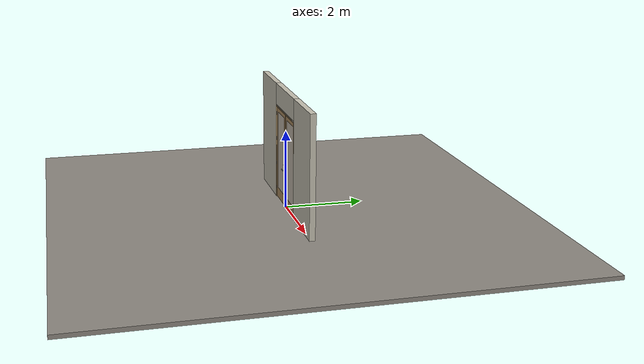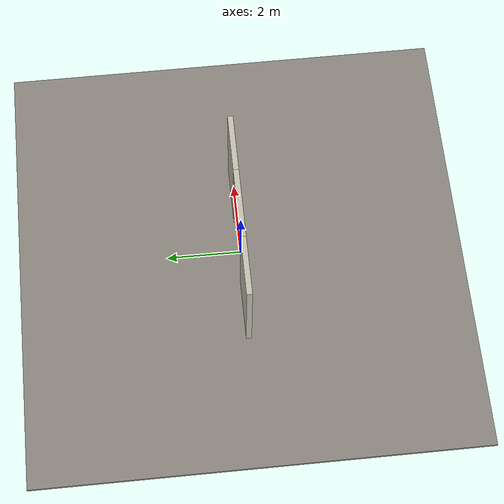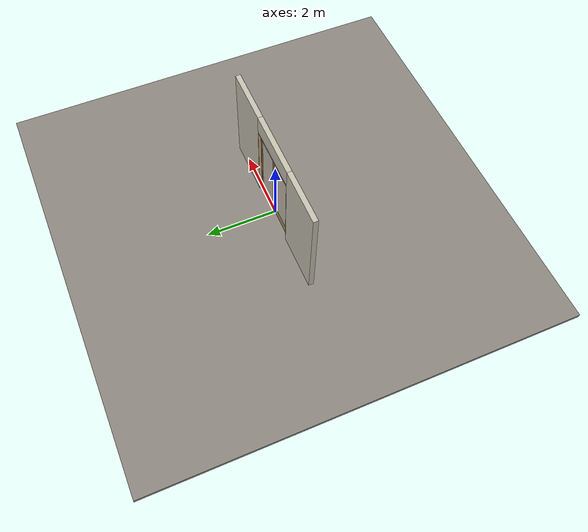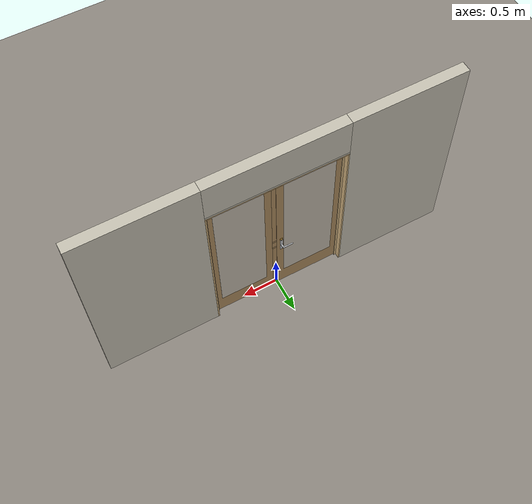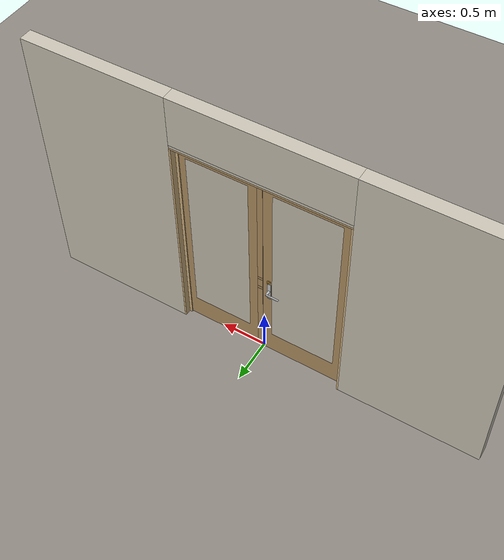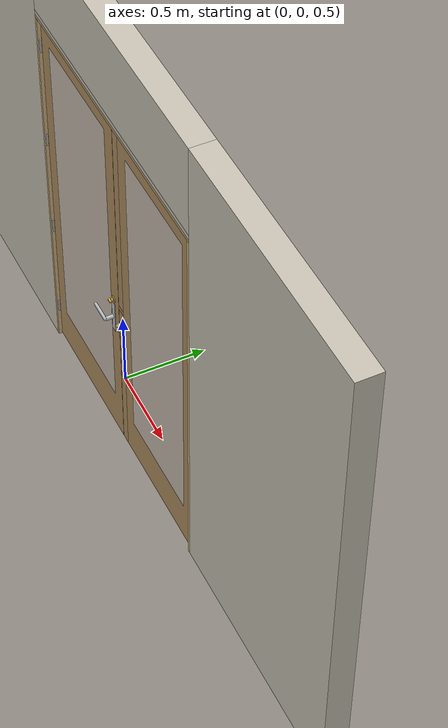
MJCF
<?xml version="1.0" ?>
<mujoco model="db0682_swing_double_full">
  <compiler angle="radian" meshdir="../../hardware" texturedir="../../textures" autolimits="true" inertiafromgeom="false"/>
  <option timestep="0.002" integrator="implicitfast" cone="elliptic" impratio="10" noslip_iterations="3">
    <flag multiccd="enable"/>
  </option>
  <size memory="16M"/>
  <default>
    <geom condim="4" solref="0.005 1" solimp="0.95 0.99 0.001"/>
    <joint solreflimit="0.005 1" solimplimit="0.95 0.99 0.001"/>
    <tendon solreflimit="0.005 1"/>
    <equality solref="0.002 1"/>
  </default>
  <visual>
    <headlight ambient="0.4 0.4 0.4" diffuse="0.7 0.7 0.7" specular="0.2 0.2 0.2"/>
    <quality shadowsize="4096"/>
    <map znear="0.01" zfar="60"/>
  </visual>
  <asset>
    <mesh name="cyl_face_e9e5036966" file="cyl_face_e9e5036966.obj"/>
    <mesh name="hinge_2af0f4d6ca" file="hinge_2af0f4d6ca.obj"/>
    <mesh name="hinge_jamb_c0c0a62ada" file="hinge_jamb_c0c0a62ada.obj"/>
    <mesh name="lever_f913fc5b7b" file="lever_f913fc5b7b.obj"/>
    <mesh name="thumbturn_eb5c9899a3" file="thumbturn_eb5c9899a3.obj"/>
    <material name="mat_floor" rgba="0.55 0.53 0.5 1" specular="0.2" shininess="0.15" reflectance="0"/>
    <material name="mat_wall" rgba="0.78 0.76 0.7 1" specular="0.2" shininess="0.1" reflectance="0"/>
    <material name="mat_leaf_a" rgba="0.686 0.557 0.377 1" specular="0.2" shininess="0.45" reflectance="0"/>
    <material name="mat_glass" rgba="0.9 0.93 0.95 0.6" specular="0.2" shininess="0.5" reflectance="0.1"/>
    <material name="mat_hinge" rgba="0.65 0.66 0.68 1" specular="0.74" shininess="0.5" reflectance="0.36"/>
    <material name="mat_op_stainless" rgba="0.75 0.76 0.77 1" specular="0.8" shininess="0.65" reflectance="0.4"/>
    <material name="mat_trim" rgba="0.85 0.66 0.3 1" specular="0.8" shininess="0.75" reflectance="0.4"/>
    <material name="mat_bolt" rgba="0.85 0.66 0.3 1" specular="0.8" shininess="0.75" reflectance="0.4"/>
    <material name="mat_deadbolt" rgba="0.85 0.66 0.3 1" specular="0.8" shininess="0.75" reflectance="0.4"/>
    <material name="mat_leaf_b" rgba="0.686 0.557 0.377 1" specular="0.2" shininess="0.45" reflectance="0"/>
    <material name="mat_frame" rgba="0.82 0.7 0.5 1" specular="0.2" shininess="0.45" reflectance="0"/>
    <texture name="skybox" type="skybox" builtin="gradient" rgb1="0.6 0.7 0.85" rgb2="0.9 0.92 0.95" width="256" height="256"/>
  </asset>
  <worldbody>
    <light name="sun" pos="1.5 -2.5 4" dir="-0.3 0.5 -0.8" directional="true" diffuse="0.8 0.8 0.8" specular="0.3 0.3 0.3" castshadow="true"/>
    <light name="fill" pos="-1.5 2.5 3" dir="0.3 -0.5 -0.7" directional="true" diffuse="0.35 0.35 0.4" castshadow="false"/>
    <camera name="robot_view" pos="0 -2.892313 2.043887" xyaxes="1 0 0 0 0.26963 0.962964" fovy="52"/>
    <camera name="far_view" pos="0 2.953313 2.043887" xyaxes="-1 0 0 0 -0.26963 0.962964" fovy="52"/>
    <camera name="iso" pos="-2.221337 -2.424663 2.511538" xyaxes="0.741536 -0.670913 0 0.242917 0.268487 0.932151" fovy="46"/>
    <camera name="detail_handle" pos="0.0045 -0.877 1.245" xyaxes="0.97561 0.219512 0 -0.070934 0.315262 0.94635" fovy="38"/>
    <geom name="floor" type="box" size="6 6 0.05" pos="0 0 -0.05" material="mat_floor" group="0" contype="1" conaffinity="1" friction="0.8 0.005 0.0001" density="2400"/>
    <geom name="wall_left" type="box" size="0.78125 0.0725 1.5255" pos="-1.71875 0.0305 1.5255" material="mat_wall" group="0" contype="1" conaffinity="1" friction="0.6 0.005 0.0001" density="800"/>
    <geom name="wall_right" type="box" size="0.78125 0.0725 1.5255" pos="1.71875 0.0305 1.5255" material="mat_wall" group="0" contype="1" conaffinity="1" friction="0.6 0.005 0.0001" density="800"/>
    <geom name="wall_header" type="box" size="0.9375 0.0725 0.2755" pos="0 0.0305 2.7755" material="mat_wall" group="0" contype="1" conaffinity="1" friction="0.6 0.005 0.0001" density="800"/>
    <geom name="hinge_0_jamb" type="mesh" mesh="hinge_jamb_c0c0a62ada" pos="-0.9155 -0.029 0.259" material="mat_hinge" group="1" contype="0" conaffinity="0" density="7850"/>
    <geom name="hinge_1_jamb" type="mesh" mesh="hinge_jamb_c0c0a62ada" pos="-0.9155 -0.029 0.928333" material="mat_hinge" group="1" contype="0" conaffinity="0" density="7850"/>
    <geom name="hinge_2_jamb" type="mesh" mesh="hinge_jamb_c0c0a62ada" pos="-0.9155 -0.029 1.597667" material="mat_hinge" group="1" contype="0" conaffinity="0" density="7850"/>
    <geom name="hinge_3_jamb" type="mesh" mesh="hinge_jamb_c0c0a62ada" pos="-0.9155 -0.029 2.267" material="mat_hinge" group="1" contype="0" conaffinity="0" density="7850"/>
    <geom name="hinge_0_jamb_2" type="mesh" mesh="hinge_jamb_c0c0a62ada" pos="0.9155 -0.029 0.259" quat="0 0 1 0" material="mat_hinge" group="1" contype="0" conaffinity="0" density="7850"/>
    <geom name="hinge_1_jamb_2" type="mesh" mesh="hinge_jamb_c0c0a62ada" pos="0.9155 -0.029 0.928333" quat="0 0 1 0" material="mat_hinge" group="1" contype="0" conaffinity="0" density="7850"/>
    <geom name="hinge_2_jamb_2" type="mesh" mesh="hinge_jamb_c0c0a62ada" pos="0.9155 -0.029 1.597667" quat="0 0 1 0" material="mat_hinge" group="1" contype="0" conaffinity="0" density="7850"/>
    <geom name="hinge_3_jamb_2" type="mesh" mesh="hinge_jamb_c0c0a62ada" pos="0.9155 -0.029 2.267" quat="0 0 1 0" material="mat_hinge" group="1" contype="0" conaffinity="0" density="7850"/>
    <geom name="jamb_l" type="box" size="0.0095 0.0725 1.2255" pos="-0.928 0.0305 1.2255" material="mat_frame" group="0" contype="1" conaffinity="1" friction="0.6 0.005 0.0001" density="300"/>
    <geom name="jamb_r" type="box" size="0.0095 0.0725 1.2255" pos="0.928 0.0305 1.2255" material="mat_frame" group="0" contype="1" conaffinity="1" friction="0.6 0.005 0.0001" density="300"/>
    <geom name="jamb_head" type="box" size="0.9375 0.0725 0.0095" pos="0 0.0305 2.4605" material="mat_frame" group="0" contype="1" conaffinity="1" friction="0.6 0.005 0.0001" density="300"/>
    <geom name="head_stud" type="box" size="0.9375 0.0725 0.015" pos="0 0.0305 2.485" material="mat_wall" group="0" contype="1" conaffinity="1" friction="0.6 0.005 0.0001" density="500"/>
    <geom name="stop_l" type="box" size="0.015 0.006 1.2255" pos="-0.9035 0.0285 1.2255" material="mat_frame" group="0" contype="1" conaffinity="1" friction="0.6 0.005 0.0001" density="300"/>
    <geom name="stop_r" type="box" size="0.015 0.006 1.2255" pos="0.9035 0.0285 1.2255" material="mat_frame" group="0" contype="1" conaffinity="1" friction="0.6 0.005 0.0001" density="300"/>
    <geom name="stop_head" type="box" size="0.9185 0.006 0.015" pos="0 0.0285 2.436" material="mat_frame" group="0" contype="1" conaffinity="1" friction="0.6 0.005 0.0001" density="300"/>
    <site name="approach_point" pos="0 -1.5 0" quat="1 0 0 0" size="0.05" rgba="0.2 0.9 0.2 0.5" group="4"/>
    <site name="goal_point" pos="0 1.5 0" quat="1 0 0 0" size="0.05" rgba="0.2 0.9 0.2 0.5" group="4"/>
    <site name="door_plane_center" pos="0 0 1.2255" quat="1 0 0 0" size="0.02" rgba="0.2 0.9 0.2 0.5" group="4"/>
    <site name="approach_point_2" pos="0 -1.5 0" quat="1 0 0 0" size="0.05" rgba="0.2 0.9 0.2 0.5" group="4"/>
    <site name="goal_point_2" pos="0 1.5 0" quat="1 0 0 0" size="0.05" rgba="0.2 0.9 0.2 0.5" group="4"/>
    <site name="door_plane_center_2" pos="0 0 1.2255" quat="1 0 0 0" size="0.02" rgba="0.2 0.9 0.2 0.5" group="4"/>
    <site name="approach_point_3" pos="0 -1.5 0" quat="1 0 0 0" size="0.05" rgba="0.2 0.9 0.2 0.5" group="4"/>
    <site name="goal_point_3" pos="0 1.5 0" quat="1 0 0 0" size="0.05" rgba="0.2 0.9 0.2 0.5" group="4"/>
    <site name="door_plane_center_3" pos="0 0 1.2255" quat="1 0 0 0" size="0.02" rgba="0.2 0.9 0.2 0.5" group="4"/>
    <body name="leaf_a" pos="-0.9185 0 0">
      <inertial pos="0.448485 -0.000452 1.225691" mass="36.635832" quat="-0.499825 0.497328 0.502619 0.500214" diaginertia="2.829515567 17.904749165 20.720898413"/>
      <joint name="leaf_a_hinge" type="hinge" axis="0 0 -1" pos="0.003 -0.029 0" limited="true" range="0 1.570796" solreflimit="0.02 1" damping="0.357281" frictionloss="1.408915" armature="0.02"/>
      <geom name="leaf_a_slab" type="box" size="0.457 0.022 1.219" pos="0.46 0 1.228" material="mat_leaf_a" group="0" contype="1" conaffinity="1" friction="0.35 0.005 0.0001" density="1"/>
      <geom name="leaf_a_glass_0" type="box" size="0.35646 0.0228 1.02396" pos="0.46 0 1.30114" material="mat_glass" group="1" contype="0" conaffinity="0" density="1"/>
      <geom name="hinge_0" type="mesh" mesh="hinge_2af0f4d6ca" pos="0.003 -0.029 0.259" material="mat_hinge" group="1" contype="0" conaffinity="0" density="7850"/>
      <geom name="hinge_1" type="mesh" mesh="hinge_2af0f4d6ca" pos="0.003 -0.029 0.928333" material="mat_hinge" group="1" contype="0" conaffinity="0" density="7850"/>
      <geom name="hinge_2" type="mesh" mesh="hinge_2af0f4d6ca" pos="0.003 -0.029 1.597667" material="mat_hinge" group="1" contype="0" conaffinity="0" density="7850"/>
      <geom name="hinge_3" type="mesh" mesh="hinge_2af0f4d6ca" pos="0.003 -0.029 2.267" material="mat_hinge" group="1" contype="0" conaffinity="0" density="7850"/>
      <geom name="leaf_a_handle_escutcheon_n" type="box" size="0.02 0.0015 0.11" pos="0.847 -0.0235 0.965" material="mat_op_stainless" group="1" contype="0" conaffinity="0" density="3000"/>
      <geom name="leaf_a_handle_escutcheon_p" type="box" size="0.02 0.0015 0.11" pos="0.847 0.0235 0.965" material="mat_op_stainless" group="1" contype="0" conaffinity="0" density="3000"/>
      <geom name="leaf_a_latch_bolt_faceplate" type="box" size="0.0006 0.01235 0.0267" pos="0.9164 0 0.965" material="mat_bolt" group="1" contype="0" conaffinity="0" density="8500"/>
      <geom name="leaf_a_deadbolt_faceplate" type="box" size="0.0006 0.014 0.0245" pos="0.9164 0 1.105" material="mat_deadbolt" group="1" contype="0" conaffinity="0" density="8500"/>
      <geom name="leaf_a_deadbolt_cylinder_face" type="mesh" mesh="cyl_face_e9e5036966" pos="0.852 0.022 1.105" quat="-0.707107 0.707107 0 0" material="mat_deadbolt" group="1" contype="0" conaffinity="0" density="7100"/>
      <site name="leaf_a_edge_mid" pos="0.917 0 1.219" quat="1 0 0 0" size="0.02" rgba="0.2 0.9 0.2 0.5" group="4"/>
      <body name="leaf_a_handle" pos="0.847 0 0.965">
        <inertial pos="-0.038995 0 0" mass="0.772658" quat="0.707107 0 0 -0.707107" diaginertia="0.001545312 0.003473151 0.004979007"/>
        <joint name="leaf_a_handle_hinge" type="hinge" axis="0 -1 0" limited="true" range="0 0.65" damping="0.225568" frictionloss="0.051863" stiffness="1" springref="-0.503022" armature="0.01"/>
        <geom name="leaf_a_handle_spindle" type="cylinder" size="0.006 0.034" pos="0 0 0" quat="0.707107 -0.707107 0 0" material="mat_op_stainless" group="1" contype="0" conaffinity="0" density="7850"/>
        <geom name="leaf_a_handle_lever_n" type="mesh" mesh="lever_f913fc5b7b" pos="0 -0.022 0" quat="0.707107 0.707107 0 0" material="mat_op_stainless" group="1" contype="0" conaffinity="0" density="3000"/>
        <geom name="leaf_a_handle_lever_col_n" type="capsule" size="0.0095 0.0555" pos="-0.065 -0.077 0" quat="0.707107 0 -0.707107 0" material="mat_op_stainless" group="3" contype="1" conaffinity="1" rgba="0.8 0.3 0.3 0.25" friction="0.7 0.01 0.0001" density="3000"/>
        <geom name="leaf_a_handle_hub_col_n" type="cylinder" size="0.012 0.022" pos="0 -0.052 0" quat="0.707107 -0.707107 0 0" material="mat_op_stainless" group="3" contype="1" conaffinity="1" rgba="0.8 0.3 0.3 0.25" friction="0.6 0.005 0.0001" density="3000"/>
        <geom name="leaf_a_handle_lever_p" type="mesh" mesh="lever_f913fc5b7b" pos="0 0.022 0" quat="-0.707107 0.707107 0 0" material="mat_op_stainless" group="1" contype="0" conaffinity="0" density="3000"/>
        <geom name="leaf_a_handle_lever_col_p" type="capsule" size="0.0095 0.0555" pos="-0.065 0.077 0" quat="0.707107 0 -0.707107 0" material="mat_op_stainless" group="3" contype="1" conaffinity="1" rgba="0.8 0.3 0.3 0.25" friction="0.7 0.01 0.0001" density="3000"/>
        <geom name="leaf_a_handle_hub_col_p" type="cylinder" size="0.012 0.022" pos="0 0.052 0" quat="0.707107 -0.707107 0 0" material="mat_op_stainless" group="3" contype="1" conaffinity="1" rgba="0.8 0.3 0.3 0.25" friction="0.6 0.005 0.0001" density="3000"/>
        <site name="leaf_a_handle_grip_n" pos="-0.104 -0.077 0" quat="1 0 0 0" size="0.012" rgba="0.2 0.9 0.2 0.5" group="4"/>
        <site name="leaf_a_handle_grip_p" pos="-0.104 0.077 0" quat="1 0 0 0" size="0.012" rgba="0.2 0.9 0.2 0.5" group="4"/>
      </body>
      <body name="leaf_a_latch_bolt" pos="0.917 0 0.965">
        <inertial pos="-0.00865 0 0" mass="0.041419" quat="0.92388 -0.382683 0 0" diaginertia="0.000000798 0.000005598 0.000005598"/>
        <joint name="leaf_a_latch_bolt_slide" type="slide" axis="-1 0 0" limited="true" range="0 0.0127" damping="2" frictionloss="0.3" stiffness="300" springref="-0.008333" armature="0.1"/>
        <geom name="leaf_a_latch_bolt_capsule" type="capsule" size="0.00635 0.015" pos="-0.00865 0 0" quat="0.707107 0 0.707107 0" material="mat_bolt" group="0" contype="1" conaffinity="1" friction="0.2 0.005 0.0001" density="8500"/>
      </body>
      <body name="leaf_a_deadbolt" pos="0.917 0 1.105">
        <inertial pos="-0.0277 0 0" mass="0.18836" quat="0 0 0.707107 0.707107" diaginertia="0.000013829 0.000052194 0.000057986"/>
        <joint name="leaf_a_deadbolt_slide" type="slide" axis="-1 0 0" limited="true" range="0 0.0254" damping="5" frictionloss="1.5" armature="0.1" ref="0.0254"/>
        <geom name="leaf_a_deadbolt_box" type="box" size="0.0277 0.008 0.0125" pos="-0.0277 0 0" material="mat_deadbolt" group="0" contype="1" conaffinity="1" friction="0.3 0.005 0.0001" density="8500"/>
      </body>
      <body name="leaf_a_deadbolt_thumbturn" pos="0.852 -0.022 1.105">
        <inertial pos="0 -0.012928 0" mass="0.178946" quat="0.000001 0.707107 -0.707107 -0.000001" diaginertia="0.000026045 0.000026215 0.000032438"/>
        <joint name="leaf_a_deadbolt_thumbturn_hinge" type="hinge" axis="0 1 0" limited="true" range="0 1.5708" damping="0.05" frictionloss="0.35" armature="0.005" ref="1.5708"/>
        <geom name="leaf_a_deadbolt_thumbturn_mesh" type="mesh" mesh="thumbturn_eb5c9899a3" pos="0 0 0" quat="0.499999 0.499999 0.500001 -0.500001" material="mat_deadbolt" group="0" contype="1" conaffinity="1" friction="0.6 0.005 0.0001" density="7100"/>
        <geom name="leaf_a_deadbolt_thumbturn_col" type="box" size="0.006 0.012 0.016" pos="0 -0.02 0" quat="0.707105 0 0.707108 0" material="mat_deadbolt" group="3" contype="1" conaffinity="1" rgba="0.8 0.3 0.3 0.25" friction="0.6 0.005 0.0001" density="7100"/>
      </body>
    </body>
    <body name="leaf_b" pos="0.9185 0 0">
      <inertial pos="-0.411647 -0.000672 1.229838" mass="35.658055" quat="0.5007 -0.498584 0.501393 0.499319" diaginertia="2.349153747 17.749239158 20.085970477"/>
      <joint name="leaf_b_hinge" type="hinge" axis="0 0 1" pos="-0.003 -0.029 0" limited="true" range="0 0.001" solreflimit="0.02 1" damping="0.357281" frictionloss="1.408915" armature="0.02"/>
      <geom name="leaf_b_edge_965_wall_n" type="box" size="0.03 0.007075 0.0167" pos="-0.887 0.014925 0.965" material="mat_leaf_b" group="0" contype="1" conaffinity="1" friction="0.6 0.005 0.0001" density="1"/>
      <geom name="leaf_b_edge_965_wall_p" type="box" size="0.03 0.008 0.0167" pos="-0.887 -0.01585 0.965" material="mat_leaf_b" group="0" contype="1" conaffinity="1" friction="0.6 0.005 0.0001" density="1"/>
      <geom name="leaf_b_edge_965_ramp" type="box" size="0.03 0.01649 0.0167" pos="-0.882861 -0.026388 0.965" quat="0.977148 0 0 0.212558" material="mat_leaf_b" group="0" contype="1" conaffinity="1" friction="0.12 0.005 0.0001" density="1"/>
      <geom name="leaf_b_edge_965_back" type="box" size="0.02165 0.00785 0.0167" pos="-0.87865 0 0.965" material="mat_leaf_b" group="0" contype="1" conaffinity="1" friction="0.6 0.005 0.0001" density="1"/>
      <geom name="leaf_b_edge_1105_wall_n" type="box" size="0.03 0.00625 0.0155" pos="-0.887 0.01575 1.105" material="mat_leaf_b" group="0" contype="1" conaffinity="1" friction="0.6 0.005 0.0001" density="1"/>
      <geom name="leaf_b_edge_1105_wall_p" type="box" size="0.03 0.00625 0.0155" pos="-0.887 -0.01575 1.105" material="mat_leaf_b" group="0" contype="1" conaffinity="1" friction="0.6 0.005 0.0001" density="1"/>
      <geom name="leaf_b_edge_1105_back" type="box" size="0.0153 0.0095 0.0155" pos="-0.8723 0 1.105" material="mat_leaf_b" group="0" contype="1" conaffinity="1" friction="0.6 0.005 0.0001" density="1"/>
      <geom name="leaf_b_edge_seg_0" type="box" size="0.03 0.022 0.46965" pos="-0.887 0 0.47865" material="mat_leaf_b" group="0" contype="1" conaffinity="1" friction="0.6 0.005 0.0001" density="1"/>
      <geom name="leaf_b_edge_seg_1" type="box" size="0.03 0.022 0.0539" pos="-0.887 0 1.0356" material="mat_leaf_b" group="0" contype="1" conaffinity="1" friction="0.6 0.005 0.0001" density="1"/>
      <geom name="leaf_b_edge_seg_2" type="box" size="0.03 0.022 0.66325" pos="-0.887 0 1.78375" material="mat_leaf_b" group="0" contype="1" conaffinity="1" friction="0.6 0.005 0.0001" density="1"/>
      <geom name="leaf_b_slab" type="box" size="0.427 0.022 1.219" pos="-0.43 0 1.228" material="mat_leaf_b" group="0" contype="1" conaffinity="1" friction="0.35 0.005 0.0001" density="1"/>
      <geom name="leaf_b_glass_0" type="box" size="0.33306 0.0228 1.02396" pos="-0.43 0 1.30114" material="mat_glass" group="1" contype="0" conaffinity="0" density="1"/>
      <geom name="hinge_0_2" type="mesh" mesh="hinge_2af0f4d6ca" pos="-0.003 -0.029 0.259" quat="0 0 1 0" material="mat_hinge" group="1" contype="0" conaffinity="0" density="7850"/>
      <geom name="hinge_1_2" type="mesh" mesh="hinge_2af0f4d6ca" pos="-0.003 -0.029 0.928333" quat="0 0 1 0" material="mat_hinge" group="1" contype="0" conaffinity="0" density="7850"/>
      <geom name="hinge_2_2" type="mesh" mesh="hinge_2af0f4d6ca" pos="-0.003 -0.029 1.597667" quat="0 0 1 0" material="mat_hinge" group="1" contype="0" conaffinity="0" density="7850"/>
      <geom name="hinge_3_2" type="mesh" mesh="hinge_2af0f4d6ca" pos="-0.003 -0.029 2.267" quat="0 0 1 0" material="mat_hinge" group="1" contype="0" conaffinity="0" density="7850"/>
      <site name="leaf_b_edge_mid" pos="-0.917 0 1.219" quat="1 0 0 0" size="0.02" rgba="0.2 0.9 0.2 0.5" group="4"/>
    </body>
  </worldbody>
  <tendon>
    <fixed name="leaf_a_latch_bolt_coupling" limited="true" range="0 10">
      <joint joint="leaf_a_latch_bolt_slide" coef="1"/>
      <joint joint="leaf_a_handle_hinge" coef="-0.02082"/>
    </fixed>
  </tendon>
  <equality>
    <joint name="leaf_a_deadbolt_couple" joint1="leaf_a_deadbolt_slide" joint2="leaf_a_deadbolt_thumbturn_hinge" polycoef="0 0.01617 0 0 0" active="true"/>
  </equality>
  <contact>
    <exclude body1="leaf_a_deadbolt" body2="leaf_a_deadbolt_thumbturn"/>
  </contact>
  <sensor>
    <jointpos name="leaf_a_hinge_pos" joint="leaf_a_hinge"/>
    <jointvel name="leaf_a_hinge_vel" joint="leaf_a_hinge"/>
    <jointpos name="leaf_a_handle_hinge_pos" joint="leaf_a_handle_hinge"/>
    <jointvel name="leaf_a_handle_hinge_vel" joint="leaf_a_handle_hinge"/>
    <jointpos name="leaf_a_latch_bolt_slide_pos" joint="leaf_a_latch_bolt_slide"/>
    <jointvel name="leaf_a_latch_bolt_slide_vel" joint="leaf_a_latch_bolt_slide"/>
    <jointpos name="leaf_a_deadbolt_slide_pos" joint="leaf_a_deadbolt_slide"/>
    <jointvel name="leaf_a_deadbolt_slide_vel" joint="leaf_a_deadbolt_slide"/>
    <jointpos name="leaf_a_deadbolt_thumbturn_hinge_pos" joint="leaf_a_deadbolt_thumbturn_hinge"/>
    <jointvel name="leaf_a_deadbolt_thumbturn_hinge_vel" joint="leaf_a_deadbolt_thumbturn_hinge"/>
    <jointpos name="leaf_b_hinge_pos" joint="leaf_b_hinge"/>
    <jointvel name="leaf_b_hinge_vel" joint="leaf_b_hinge"/>
  </sensor>
</mujoco>
